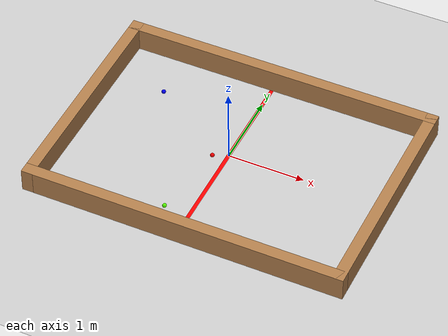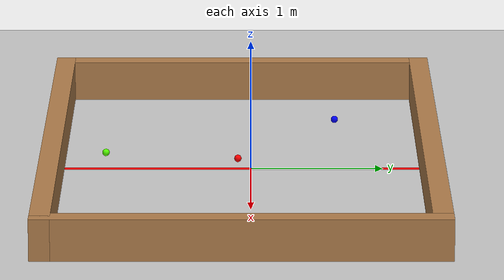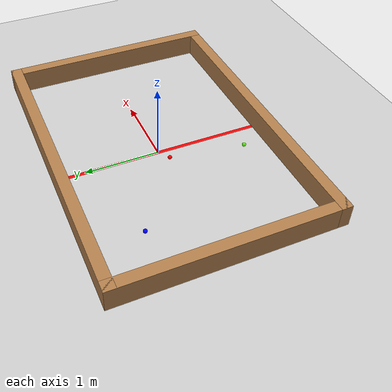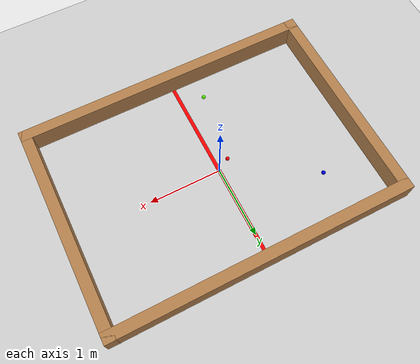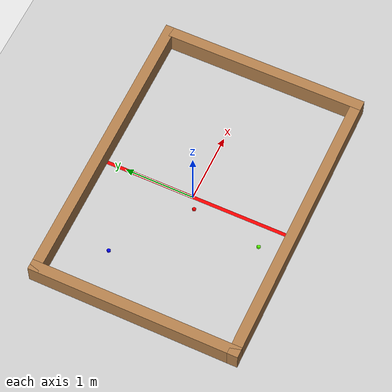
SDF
<sdf version="1.7">
 <world name="default">
  <scene><ambient>0.4 0.4 0.4 1</ambient><background>0.7 0.7 0.7 1</background><shadows>0</shadows></scene>
  <light name="sun" type="directional">
   <pose>0 0 10 0 -0 0</pose>
   <diffuse>0.8 0.8 0.8 1</diffuse>
   <specular>0.2 0.2 0.2 1</specular>
   <attenuation>
    <range>1000</range>
    <constant>0.9</constant>
    <linear>0.01</linear>
    <quadratic>0.001</quadratic>
   </attenuation>
   <direction>-0.5 0.1 -0.9</direction>
   <spot><inner_angle>0</inner_angle><outer_angle>0</outer_angle><falloff>0</falloff></spot>
  </light>
  <model name="ground_plane">
   <static>1</static>
   <link name="link">
    <collision name="collision">
     <geometry><plane><normal>0 0 1</normal><size>100 100</size></plane></geometry>
     <surface>
      <contact><collide_bitmask>65535</collide_bitmask></contact>
      <friction><ode><mu>100</mu><mu2>50</mu2></ode></friction>
     </surface>
    </collision>
    <visual name="visual">
     <cast_shadows>0</cast_shadows>
     <geometry><plane><normal>0 0 1</normal><size>100 100</size></plane></geometry>
     <material>
      <script><uri>file://media/materials/scripts/gazebo.material</uri><name>Gazebo/Grey</name></script>
     </material>
    </visual>
   </link>
  </model>
  <physics type="ode">
   <real_time_update_rate>1000</real_time_update_rate>
   <max_step_size>0.001</max_step_size>
   <real_time_factor>1</real_time_factor>
   <ode>
    <solver>
     <type>quick</type>
     <iters>150</iters>
     <precon_iters>0</precon_iters>
     <sor>1.4</sor>
     <use_dynamic_moi_rescaling>1</use_dynamic_moi_rescaling>
    </solver>
    <constraints>
     <cfm>1e-05</cfm>
     <erp>0.2</erp>
     <contact_max_correcting_vel>2000</contact_max_correcting_vel>
     <contact_surface_layer>0.01</contact_surface_layer>
    </constraints>
   </ode>
  </physics>
  <gravity>0 0 -9.8</gravity>
  <magnetic_field>6e-06 2.3e-05 -4.2e-05</magnetic_field>
  <atmosphere type="adiabatic"/>
  <spherical_coordinates>
   <surface_model>EARTH_WGS84</surface_model>
   <latitude_deg>0</latitude_deg>
   <longitude_deg>0</longitude_deg>
   <elevation>0</elevation>
   <heading_deg>0</heading_deg>
  </spherical_coordinates>
  <model name="playground">
   <pose>0.565292 1.64558 0 0 -0 0</pose>
   <link name="Wall_11">
    <collision name="Wall_11_Collision">
     <geometry><box><size>4.2 0.15 0.31</size></box></geometry>
     <pose>0 0 0.155 0 -0 0</pose>
    </collision>
    <visual name="Wall_11_Visual">
     <pose>0 0 0.155 0 -0 0</pose>
     <geometry><box><size>4.2 0.15 0.31</size></box></geometry>
     <material>
      <script><uri>file://media/materials/scripts/gazebo.material</uri><name>Gazebo/Wood</name></script>
      <ambient>1 1 1 1</ambient>
     </material>
     <meta><layer>0</layer></meta>
    </visual>
    <pose>-0.482 -0.288 0 0 -0 3.14159</pose>
   </link>
   <link name="Wall_13">
    <collision name="Wall_13_Collision">
     <geometry><box><size>3 0.15 0.31</size></box></geometry>
     <pose>0 0 0.155 0 -0 0</pose>
    </collision>
    <visual name="Wall_13_Visual">
     <pose>0 0 0.155 0 -0 0</pose>
     <geometry><box><size>3 0.15 0.31</size></box></geometry>
     <material>
      <script><uri>file://media/materials/scripts/gazebo.material</uri><name>Gazebo/Wood</name></script>
      <ambient>1 1 1 1</ambient>
     </material>
     <meta><layer>0</layer></meta>
    </visual>
    <pose>1.543 -1.713 0 0 -0 -1.5708</pose>
   </link>
   <link name="Wall_15">
    <collision name="Wall_15_Collision">
     <geometry><box><size>4.2 0.15 0.31</size></box></geometry>
     <pose>0 0 0.155 0 -0 0</pose>
    </collision>
    <visual name="Wall_15_Visual">
     <pose>0 0 0.155 0 -0 0</pose>
     <geometry><box><size>4.2 0.15 0.31</size></box></geometry>
     <material>
      <script><uri>file://media/materials/scripts/gazebo.material</uri><name>Gazebo/Wood</name></script>
      <ambient>1 1 1 1</ambient>
     </material>
     <meta><layer>0</layer></meta>
    </visual>
    <pose>-0.482 -3.138 0 0 -0 3.14159</pose>
   </link>
   <link name="Wall_17">
    <collision name="Wall_17_Collision">
     <geometry><box><size>3 0.15 0.31</size></box></geometry>
     <pose>0 0 0.155 0 -0 0</pose>
    </collision>
    <visual name="Wall_17_Visual">
     <pose>0 0 0.155 0 -0 0</pose>
     <geometry><box><size>3 0.15 0.31</size></box></geometry>
     <material>
      <script><uri>file://media/materials/scripts/gazebo.material</uri><name>Gazebo/Wood</name></script>
      <ambient>1 1 1 1</ambient>
     </material>
     <meta><layer>0</layer></meta>
    </visual>
    <pose>-2.507 -1.713 0 0 -0 1.5708</pose>
   </link>
   <static>1</static>
  </model>
  <model name="line_Red">
   <pose>0 -0.09 0 0 -0 0</pose>
   <link name="Wall_0">
    <collision name="Wall_0_Collision"><geometry><box><size>2.95 0.05 0</size></box></geometry></collision>
    <visual name="Wall_0_Visual">
     <geometry><box><size>2.95 0.05 0</size></box></geometry>
     <material>
      <script><uri>file://media/materials/scripts/gazebo.material</uri><name>Gazebo/Grey</name></script>
      <ambient>1 0 0 1</ambient>
     </material>
     <meta><layer>0</layer></meta>
    </visual>
    <pose>0 0 0 0 -0 1.5708</pose>
   </link>
   <static>1</static>
  </model>
  <model name="ball_Blue">
   <link name="link_1">
    <inertial>
     <mass>0.005</mass>
     <inertia><ixx>0.0005</ixx><ixy>0</ixy><ixz>0</ixz><iyy>0.0005</iyy><iyz>0</iyz><izz>0.0005</izz></inertia>
    </inertial>
    <pose>0 0 0.067255 0 -0 0</pose>
    <visual name="visual">
     <geometry><sphere><radius>0.0275</radius></sphere></geometry>
     <material>
      <lighting>1</lighting>
      <script><uri>file://media/materials/scripts/gazebo.material</uri><name>Gazebo/Grey</name></script>
      <shader type="pixel"><normal_map>__default__</normal_map></shader>
      <ambient>0 0 1 1</ambient>
      <diffuse>0.7 0.7 0.7 1</diffuse>
      <specular>0.01 0.01 0.01 1</specular>
      <emissive>0 0 0 1</emissive>
     </material>
    </visual>
    <collision name="collision">
     <geometry><sphere><radius>0.0275</radius></sphere></geometry>
     <surface>
      <friction>
       <ode><mu>1</mu><mu2>1</mu2><fdir1>0 0 0</fdir1><slip1>0</slip1><slip2>0</slip2></ode>
       <torsional>
        <coefficient>1</coefficient>
        <patch_radius>0</patch_radius>
        <surface_radius>0</surface_radius>
        <use_patch_radius>1</use_patch_radius>
        <ode><slip>0</slip></ode>
       </torsional>
      </friction>
      <bounce><restitution_coefficient>0</restitution_coefficient><threshold>1e+06</threshold></bounce>
      <contact>
       <collide_without_contact>0</collide_without_contact>
       <collide_without_contact_bitmask>1</collide_without_contact_bitmask>
       <collide_bitmask>1</collide_bitmask>
       <ode>
        <soft_cfm>0</soft_cfm>
        <soft_erp>0.2</soft_erp>
        <kp>1e+13</kp>
        <kd>1</kd>
        <max_vel>0.01</max_vel>
        <min_depth>0</min_depth>
       </ode>
       <bullet>
        <split_impulse>1</split_impulse>
        <split_impulse_penetration_threshold>-0.01</split_impulse_penetration_threshold>
        <soft_cfm>0</soft_cfm>
        <soft_erp>0.2</soft_erp>
        <kp>1e+13</kp>
        <kd>1</kd>
       </bullet>
      </contact>
     </surface>
    </collision>
   </link>
   <static>0</static>
   <pose>-1.21408 0.663614 -0.039755 0 -0 0</pose>
  </model>
  <model name="ball_Red">
   <link name="link_1">
    <inertial>
     <mass>0.005</mass>
     <inertia><ixx>0.0005</ixx><ixy>0</ixy><ixz>0</ixz><iyy>0.0005</iyy><iyz>0</iyz><izz>0.0005</izz></inertia>
    </inertial>
    <pose>0 0 0.067255 0 -0 0</pose>
    <visual name="visual">
     <geometry><sphere><radius>0.0275</radius></sphere></geometry>
     <material>
      <lighting>1</lighting>
      <script><uri>file://media/materials/scripts/gazebo.material</uri><name>Gazebo/Grey</name></script>
      <shader type="pixel"><normal_map>__default__</normal_map></shader>
      <ambient>1 0 0 1</ambient>
      <diffuse>0.7 0.7 0.7 1</diffuse>
      <specular>0.01 0.01 0.01 1</specular>
      <emissive>0 0 0 1</emissive>
     </material>
    </visual>
    <collision name="collision">
     <geometry><sphere><radius>0.0275</radius></sphere></geometry>
     <surface>
      <friction>
       <ode><mu>1</mu><mu2>1</mu2><fdir1>0 0 0</fdir1><slip1>0</slip1><slip2>0</slip2></ode>
       <torsional>
        <coefficient>1</coefficient>
        <patch_radius>0</patch_radius>
        <surface_radius>0</surface_radius>
        <use_patch_radius>1</use_patch_radius>
        <ode><slip>0</slip></ode>
       </torsional>
      </friction>
      <bounce><restitution_coefficient>0</restitution_coefficient><threshold>1e+06</threshold></bounce>
      <contact>
       <collide_without_contact>0</collide_without_contact>
       <collide_without_contact_bitmask>1</collide_without_contact_bitmask>
       <collide_bitmask>1</collide_bitmask>
       <ode>
        <soft_cfm>0</soft_cfm>
        <soft_erp>0.2</soft_erp>
        <kp>1e+13</kp>
        <kd>1</kd>
        <max_vel>0.01</max_vel>
        <min_depth>0</min_depth>
       </ode>
       <bullet>
        <split_impulse>1</split_impulse>
        <split_impulse_penetration_threshold>-0.01</split_impulse_penetration_threshold>
        <soft_cfm>0</soft_cfm>
        <soft_erp>0.2</soft_erp>
        <kp>1e+13</kp>
        <kd>1</kd>
       </bullet>
      </contact>
     </surface>
    </collision>
   </link>
   <static>0</static>
   <pose>-0.173921 -0.09822 -0.039755 0 -0 0</pose>
  </model>
  <model name="ball_Green">
   <link name="link_1">
    <inertial>
     <mass>0.005</mass>
     <inertia><ixx>0.0005</ixx><ixy>0</ixy><ixz>0</ixz><iyy>0.0005</iyy><iyz>0</iyz><izz>0.0005</izz></inertia>
    </inertial>
    <pose>0 0 0.067255 0 -0 0</pose>
    <visual name="visual">
     <geometry><sphere><radius>0.0275</radius></sphere></geometry>
     <material>
      <lighting>1</lighting>
      <script><uri>file://media/materials/scripts/gazebo.material</uri><name>Gazebo/Grey</name></script>
      <shader type="pixel"><normal_map>__default__</normal_map></shader>
      <ambient>0.333 1 0 1</ambient>
      <diffuse>0.7 0.7 0.7 1</diffuse>
      <specular>0.01 0.01 0.01 1</specular>
      <emissive>0 0 0 1</emissive>
     </material>
    </visual>
    <collision name="collision">
     <geometry><sphere><radius>0.0275</radius></sphere></geometry>
     <surface>
      <friction>
       <ode><mu>1</mu><mu2>1</mu2><fdir1>0 0 0</fdir1><slip1>0</slip1><slip2>0</slip2></ode>
       <torsional>
        <coefficient>1</coefficient>
        <patch_radius>0</patch_radius>
        <surface_radius>0</surface_radius>
        <use_patch_radius>1</use_patch_radius>
        <ode><slip>0</slip></ode>
       </torsional>
      </friction>
      <bounce><restitution_coefficient>0</restitution_coefficient><threshold>1e+06</threshold></bounce>
      <contact>
       <collide_without_contact>0</collide_without_contact>
       <collide_without_contact_bitmask>1</collide_without_contact_bitmask>
       <collide_bitmask>1</collide_bitmask>
       <ode>
        <soft_cfm>0</soft_cfm>
        <soft_erp>0.2</soft_erp>
        <kp>1e+13</kp>
        <kd>1</kd>
        <max_vel>0.01</max_vel>
        <min_depth>0</min_depth>
       </ode>
       <bullet>
        <split_impulse>1</split_impulse>
        <split_impulse_penetration_threshold>-0.01</split_impulse_penetration_threshold>
        <soft_cfm>0</soft_cfm>
        <soft_erp>0.2</soft_erp>
        <kp>1e+13</kp>
        <kd>1</kd>
       </bullet>
      </contact>
     </surface>
    </collision>
   </link>
   <static>0</static>
   <pose>-0.326296 -1.11366 -0.039755 0 -0 0</pose>
  </model>
 </world>
</sdf>
